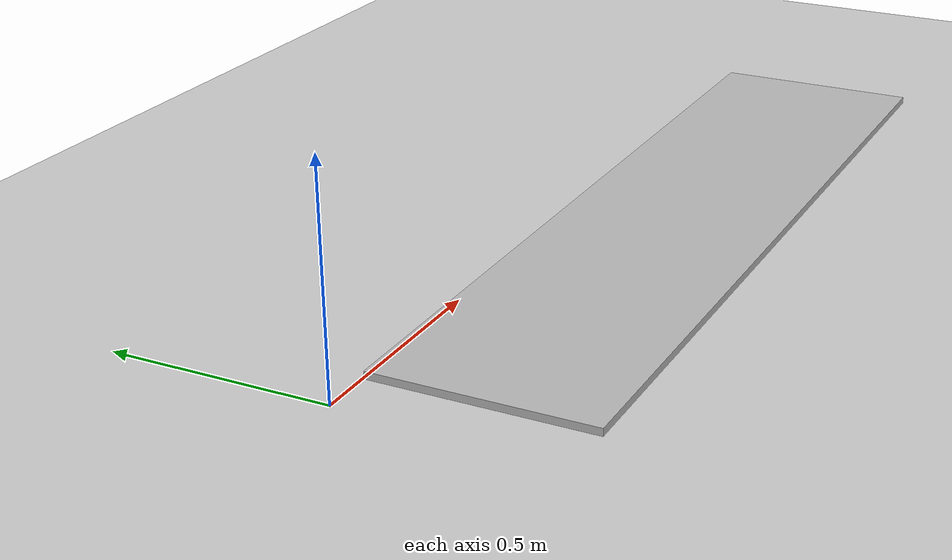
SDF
<?xml version="1.0" ?>
<sdf version="1.4">
  <world name="default">
    <gravity>0.000000 0.000000 -9.810000</gravity>
    <light name='sun' type='directional'>
      <cast_shadows>1</cast_shadows>
      <pose>0 0 10 0 -0 0</pose>
      <diffuse>0.8 0.8 0.8 1</diffuse>
      <specular>0.2 0.2 0.2 1</specular>
      <attenuation>
        <range>1000</range>
        <constant>0.9</constant>
        <linear>0.01</linear>
        <quadratic>0.001</quadratic>
      </attenuation>
      <direction>-0.5 0.1 -0.9</direction>
    </light>

    <scene>
      <shadows>0</shadows>
    </scene>

    <physics type="ode">
      <real_time_update_rate>1000.0</real_time_update_rate>
      <max_step_size>0.001</max_step_size>
      <real_time_factor>1</real_time_factor>
      <real_time_update_rate>1000</real_time_update_rate>
      <ode>
        <solver>
          <type>quick</type>
          <iters>200</iters>
          <precon_iters>0</precon_iters>
          <sor>1.4</sor>
          <use_dynamic_moi_rescaling>1</use_dynamic_moi_rescaling>
        </solver>
        <constraints>
          <cfm>0.000000</cfm>
          <erp>0.8</erp>
          <contact_max_correcting_vel>2000.000000</contact_max_correcting_vel>
          <contact_surface_layer>0.01000</contact_surface_layer>
        </constraints>
      </ode>
    </physics>

    <model name='ground_plane'>
      <static>1</static>
      <link name='link'>
        <collision name='collision'>
          <geometry>
            <plane>
              <normal>0 0 1</normal>
              <size>100 100</size>
            </plane>
          </geometry>
          <surface>
            <friction>
              <ode>
                <mu>100</mu>
                <mu2>50</mu2>
                <fdir1>1 0 0</fdir1>
              </ode>
            </friction>
            <bounce/>
            <contact>
              <ode/>
            </contact>
          </surface>
          <max_contacts>10</max_contacts>
        </collision>
        <visual name='visual'>
          <cast_shadows>0</cast_shadows>
          <geometry>
            <plane>
              <normal>0 0 1</normal>
              <size>100 100</size>
            </plane>
          </geometry>
          <material>
            <script>
              <uri>file://media/materials/scripts/gazebo.material</uri>
              <name>Gazebo/Grey</name>
            </script>
          </material>
        </visual>
        <velocity_decay>
          <linear>0</linear>
          <angular>0</angular>
        </velocity_decay>
        <self_collide>0</self_collide>
        <kinematic>0</kinematic>
        <gravity>1</gravity>
      </link>
    </model>

    <gui fullscreen='0'>
      <camera name='user_camera'>
	<pose> 2.0 -2.0 1.2 0.0 0.275643 2.356190 </pose>
	<view_controller>orbit</view_controller>
      </camera>
    </gui>

    <model name="box">
      <static>true</static>
      <pose>1.12 -0.25 -0.035 0 0 0</pose>
      <link name="link">
        <collision name="collision">
          <geometry>
            <box>
              <size>2.0 0.5 .10</size>
            </box>
          </geometry>
	  <surface>
            <friction>
              <ode>
                <mu>100</mu>
                <mu2>50</mu2>
              </ode>
              <torsional>
                <ode/>
              </torsional>
            </friction>
            <contact>
              <ode/>
            </contact>
            <bounce/>
          </surface>
          <max_contacts>10</max_contacts>
        </collision>
        <visual name="visual">
          <geometry>
            <box>
              <size>2.0 0.5 .10</size>
            </box>
          </geometry>
        </visual>
      </link>
    </model>
  </world>
</sdf>
